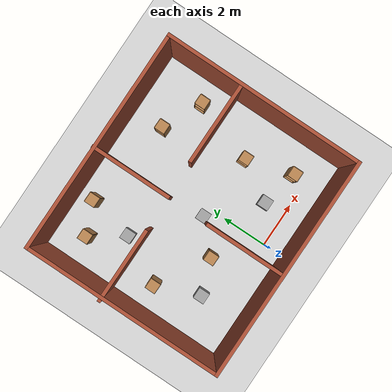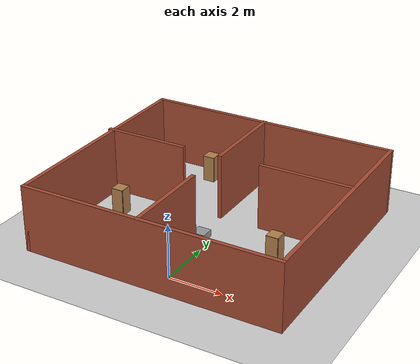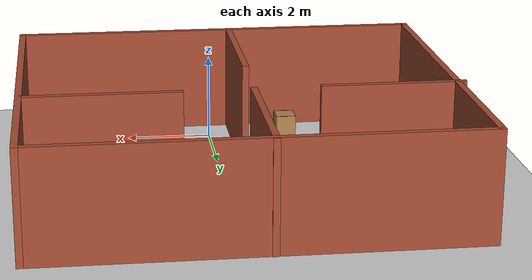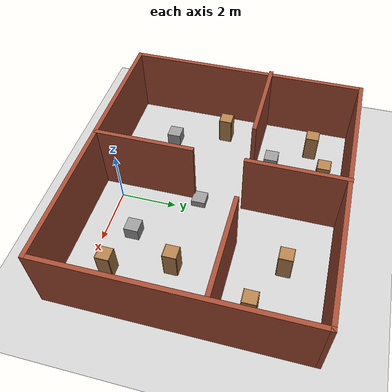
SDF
<sdf version="1.7">
 <world name="default">
  <light name="sun" type="directional">
   <pose>0 0 10 0 -0 0</pose>
   <diffuse>0.8 0.8 0.8 1</diffuse>
   <specular>0.2 0.2 0.2 1</specular>
   <attenuation>
    <range>1000</range>
    <constant>0.9</constant>
    <linear>0.01</linear>
    <quadratic>0.001</quadratic>
   </attenuation>
   <direction>-0.5 0.1 -0.9</direction>
   <spot><inner_angle>0</inner_angle><outer_angle>0</outer_angle><falloff>0</falloff></spot>
  </light>
  <model name="ground_plane">
   <static>1</static>
   <link name="link">
    <collision name="collision">
     <geometry><plane><normal>0 0 1</normal><size>100 100</size></plane></geometry>
     <surface>
      <contact><collide_bitmask>65535</collide_bitmask></contact>
      <friction><ode><mu>100</mu><mu2>50</mu2></ode></friction>
     </surface>
    </collision>
    <visual name="visual">
     <cast_shadows>0</cast_shadows>
     <geometry><plane><normal>0 0 1</normal><size>100 100</size></plane></geometry>
     <material>
      <script><uri>file://media/materials/scripts/gazebo.material</uri><name>Gazebo/Grey</name></script>
     </material>
    </visual>
   </link>
  </model>
  <gravity>0 0 -9.8</gravity>
  <magnetic_field>6e-06 2.3e-05 -4.2e-05</magnetic_field>
  <atmosphere type="adiabatic"/>
  <physics type="ode">
   <max_step_size>0.001</max_step_size>
   <real_time_factor>1</real_time_factor>
   <real_time_update_rate>1000</real_time_update_rate>
  </physics>
  <scene><ambient>0.4 0.4 0.4 1</ambient><background>0.7 0.7 0.7 1</background><shadows>1</shadows></scene>
  <audio><device>default</device></audio>
  <spherical_coordinates>
   <surface_model>EARTH_WGS84</surface_model>
   <latitude_deg>0</latitude_deg>
   <longitude_deg>0</longitude_deg>
   <elevation>0</elevation>
   <heading_deg>0</heading_deg>
  </spherical_coordinates>
  <model name="Untitled">
   <pose>-0.339838 3.43496 0 0 -0 0</pose>
   <link name="Wall_11">
    <collision name="Wall_11_Collision">
     <geometry><box><size>9.75 0.15 2.5</size></box></geometry>
     <pose>0 0 1.25 0 -0 0</pose>
    </collision>
    <visual name="Wall_11_Visual">
     <pose>0 0 1.25 0 -0 0</pose>
     <geometry><box><size>9.75 0.15 2.5</size></box></geometry>
     <material>
      <script><uri>file://media/materials/scripts/gazebo.material</uri><name>Gazebo/Bricks</name></script>
      <ambient>1 1 1 1</ambient>
     </material>
     <meta><layer>0</layer></meta>
    </visual>
    <pose>0.060683 -4.30852 0 0 -0 0</pose>
   </link>
   <link name="Wall_12">
    <collision name="Wall_12_Collision">
     <geometry><box><size>8.75 0.15 2.5</size></box></geometry>
     <pose>0 0 1.25 0 -0 0</pose>
    </collision>
    <visual name="Wall_12_Visual">
     <pose>0 0 1.25 0 -0 0</pose>
     <geometry><box><size>8.75 0.15 2.5</size></box></geometry>
     <material>
      <script><uri>file://media/materials/scripts/gazebo.material</uri><name>Gazebo/Bricks</name></script>
      <ambient>1 1 1 1</ambient>
     </material>
     <meta><layer>0</layer></meta>
    </visual>
    <pose>4.86068 -0.008519 0 0 -0 1.5708</pose>
   </link>
   <link name="Wall_13">
    <collision name="Wall_13_Collision">
     <geometry><box><size>9.75 0.15 2.5</size></box></geometry>
     <pose>0 0 1.25 0 -0 0</pose>
    </collision>
    <visual name="Wall_13_Visual">
     <pose>0 0 1.25 0 -0 0</pose>
     <geometry><box><size>9.75 0.15 2.5</size></box></geometry>
     <material>
      <script><uri>file://media/materials/scripts/gazebo.material</uri><name>Gazebo/Bricks</name></script>
      <ambient>1 1 1 1</ambient>
     </material>
     <meta><layer>0</layer></meta>
    </visual>
    <pose>0.060683 4.29148 0 0 -0 3.14159</pose>
   </link>
   <link name="Wall_14">
    <collision name="Wall_14_Collision">
     <geometry><box><size>8.75 0.15 2.5</size></box></geometry>
     <pose>0 0 1.25 0 -0 0</pose>
    </collision>
    <visual name="Wall_14_Visual">
     <pose>0 0 1.25 0 -0 0</pose>
     <geometry><box><size>8.75 0.15 2.5</size></box></geometry>
     <material>
      <script><uri>file://media/materials/scripts/gazebo.material</uri><name>Gazebo/Bricks</name></script>
      <ambient>1 1 1 1</ambient>
     </material>
     <meta><layer>0</layer></meta>
    </visual>
    <pose>-4.73932 -0.008519 0 0 -0 -1.5708</pose>
   </link>
   <link name="Wall_16">
    <collision name="Wall_16_Collision">
     <geometry><box><size>3.5 0.15 2.5</size></box></geometry>
     <pose>0 0 1.25 0 -0 0</pose>
    </collision>
    <visual name="Wall_16_Visual">
     <pose>0 0 1.25 0 -0 0</pose>
     <geometry><box><size>3.5 0.15 2.5</size></box></geometry>
     <material>
      <script><uri>file://media/materials/scripts/gazebo.material</uri><name>Gazebo/Bricks</name></script>
      <ambient>1 1 1 1</ambient>
     </material>
     <meta><layer>0</layer></meta>
    </visual>
    <pose>-0.208292 2.63352 0 0 -0 -1.5708</pose>
   </link>
   <link name="Wall_19">
    <collision name="Wall_19_Collision">
     <geometry><box><size>3.5 0.15 2.5</size></box></geometry>
     <pose>0 0 1.25 0 -0 0</pose>
    </collision>
    <visual name="Wall_19_Visual">
     <pose>0 0 1.25 0 -0 0</pose>
     <geometry><box><size>3.5 0.15 2.5</size></box></geometry>
     <material>
      <script><uri>file://media/materials/scripts/gazebo.material</uri><name>Gazebo/Bricks</name></script>
      <ambient>1 1 1 1</ambient>
     </material>
     <meta><layer>0</layer></meta>
    </visual>
    <pose>3.08493 0.991162 0 0 -0 0</pose>
   </link>
   <link name="Wall_21">
    <collision name="Wall_21_Collision">
     <geometry><box><size>3.25 0.15 2.5</size></box></geometry>
     <pose>0 0 1.25 0 -0 0</pose>
    </collision>
    <visual name="Wall_21_Visual">
     <pose>0 0 1.25 0 -0 0</pose>
     <geometry><box><size>3.25 0.15 2.5</size></box></geometry>
     <material>
      <script><uri>file://media/materials/scripts/gazebo.material</uri><name>Gazebo/Bricks</name></script>
      <ambient>1 1 1 1</ambient>
     </material>
     <meta><layer>0</layer></meta>
    </visual>
    <pose>-3.31068 0.910251 0 0 -0 0</pose>
   </link>
   <link name="Wall_23">
    <collision name="Wall_23_Collision">
     <geometry><box><size>3.5 0.15 2.5</size></box></geometry>
     <pose>0 0 1.25 0 -0 0</pose>
    </collision>
    <visual name="Wall_23_Visual">
     <pose>0 0 1.25 0 -0 0</pose>
     <geometry><box><size>3.5 0.15 2.5</size></box></geometry>
     <material>
      <script><uri>file://media/materials/scripts/gazebo.material</uri><name>Gazebo/Bricks</name></script>
      <ambient>1 1 1 1</ambient>
     </material>
     <meta><layer>0</layer></meta>
    </visual>
    <pose>-0.248748 -2.58525 0 0 -0 -1.5708</pose>
   </link>
   <static>1</static>
  </model>
  <model name="unit_box">
   <link name="link">
    <inertial>
     <mass>1</mass>
     <inertia>
      <ixx>0.166667</ixx>
      <ixy>0</ixy>
      <ixz>0</ixz>
      <iyy>0.166667</iyy>
      <iyz>0</iyz>
      <izz>0.166667</izz>
     </inertia>
    </inertial>
    <visual name="visual">
     <geometry><box><size>0.5 0.5 0.5</size></box></geometry>
     <material>
      <script><name>Gazebo/Grey</name><uri>file://media/materials/scripts/gazebo.material</uri></script>
      <shader type="pixel"><normal_map>__default__</normal_map></shader>
      <ambient>0.3 0.3 0.3 1</ambient>
      <diffuse>0.7 0.7 0.7 1</diffuse>
      <specular>0.01 0.01 0.01 1</specular>
      <emissive>0 0 0 1</emissive>
     </material>
    </visual>
    <collision name="collision">
     <geometry><box><size>0.5 0.5 0.5</size></box></geometry>
     <surface>
      <friction>
       <ode><mu>1</mu><mu2>1</mu2><fdir1>0 0 0</fdir1><slip1>0</slip1><slip2>0</slip2></ode>
       <torsional>
        <coefficient>1</coefficient>
        <patch_radius>0</patch_radius>
        <surface_radius>0</surface_radius>
        <use_patch_radius>1</use_patch_radius>
        <ode><slip>0</slip></ode>
       </torsional>
      </friction>
      <bounce><restitution_coefficient>0</restitution_coefficient><threshold>1e+06</threshold></bounce>
      <contact>
       <collide_without_contact>0</collide_without_contact>
       <collide_without_contact_bitmask>1</collide_without_contact_bitmask>
       <collide_bitmask>1</collide_bitmask>
       <ode>
        <soft_cfm>0</soft_cfm>
        <soft_erp>0.2</soft_erp>
        <kp>1e+13</kp>
        <kd>1</kd>
        <max_vel>0.01</max_vel>
        <min_depth>0</min_depth>
       </ode>
       <bullet>
        <split_impulse>1</split_impulse>
        <split_impulse_penetration_threshold>-0.01</split_impulse_penetration_threshold>
        <soft_cfm>0</soft_cfm>
        <soft_erp>0.2</soft_erp>
        <kp>1e+13</kp>
        <kd>1</kd>
       </bullet>
      </contact>
     </surface>
    </collision>
   </link>
   <link name="link_clone">
    <inertial>
     <mass>1</mass>
     <inertia>
      <ixx>0.166667</ixx>
      <ixy>0</ixy>
      <ixz>0</ixz>
      <iyy>0.166667</iyy>
      <iyz>0</iyz>
      <izz>0.166667</izz>
     </inertia>
    </inertial>
    <pose>2.42063 -2.15933 0 0 -0 0</pose>
    <visual name="visual">
     <geometry><box><size>0.5 0.5 0.5</size></box></geometry>
     <material>
      <script><name>Gazebo/Grey</name><uri>file://media/materials/scripts/gazebo.material</uri></script>
      <shader type="pixel"><normal_map>__default__</normal_map></shader>
      <ambient>0.3 0.3 0.3 1</ambient>
      <diffuse>0.7 0.7 0.7 1</diffuse>
      <specular>0.01 0.01 0.01 1</specular>
      <emissive>0 0 0 1</emissive>
     </material>
     <pose>0 0 -0.25 0 -0 0</pose>
    </visual>
    <collision name="collision">
     <geometry><box><size>0.5 0.5 0.5</size></box></geometry>
     <surface>
      <friction>
       <ode><mu>1</mu><mu2>1</mu2><fdir1>0 0 0</fdir1><slip1>0</slip1><slip2>0</slip2></ode>
       <torsional>
        <coefficient>1</coefficient>
        <patch_radius>0</patch_radius>
        <surface_radius>0</surface_radius>
        <use_patch_radius>1</use_patch_radius>
        <ode><slip>0</slip></ode>
       </torsional>
      </friction>
      <bounce><restitution_coefficient>0</restitution_coefficient><threshold>1e+06</threshold></bounce>
      <contact>
       <collide_without_contact>0</collide_without_contact>
       <collide_without_contact_bitmask>1</collide_without_contact_bitmask>
       <collide_bitmask>1</collide_bitmask>
       <ode>
        <soft_cfm>0</soft_cfm>
        <soft_erp>0.2</soft_erp>
        <kp>1e+13</kp>
        <kd>1</kd>
        <max_vel>0.01</max_vel>
        <min_depth>0</min_depth>
       </ode>
       <bullet>
        <split_impulse>1</split_impulse>
        <split_impulse_penetration_threshold>-0.01</split_impulse_penetration_threshold>
        <soft_cfm>0</soft_cfm>
        <soft_erp>0.2</soft_erp>
        <kp>1e+13</kp>
        <kd>1</kd>
       </bullet>
      </contact>
     </surface>
    </collision>
   </link>
   <link name="link_clone_0">
    <inertial>
     <mass>1</mass>
     <inertia>
      <ixx>0.166667</ixx>
      <ixy>0</ixy>
      <ixz>0</ixz>
      <iyy>0.166667</iyy>
      <iyz>0</iyz>
      <izz>0.166667</izz>
     </inertia>
    </inertial>
    <pose>-0.36477 -3.92474 0 0 -0 0</pose>
    <visual name="visual">
     <geometry><box><size>0.5 0.5 0.5</size></box></geometry>
     <material>
      <script><name>Gazebo/Grey</name><uri>file://media/materials/scripts/gazebo.material</uri></script>
      <shader type="pixel"><normal_map>__default__</normal_map></shader>
      <ambient>0.3 0.3 0.3 1</ambient>
      <diffuse>0.7 0.7 0.7 1</diffuse>
      <specular>0.01 0.01 0.01 1</specular>
      <emissive>0 0 0 1</emissive>
     </material>
    </visual>
    <collision name="collision">
     <geometry><box><size>0.5 0.5 0.5</size></box></geometry>
     <surface>
      <friction>
       <ode><mu>1</mu><mu2>1</mu2><fdir1>0 0 0</fdir1><slip1>0</slip1><slip2>0</slip2></ode>
       <torsional>
        <coefficient>1</coefficient>
        <patch_radius>0</patch_radius>
        <surface_radius>0</surface_radius>
        <use_patch_radius>1</use_patch_radius>
        <ode><slip>0</slip></ode>
       </torsional>
      </friction>
      <bounce><restitution_coefficient>0</restitution_coefficient><threshold>1e+06</threshold></bounce>
      <contact>
       <collide_without_contact>0</collide_without_contact>
       <collide_without_contact_bitmask>1</collide_without_contact_bitmask>
       <collide_bitmask>1</collide_bitmask>
       <ode>
        <soft_cfm>0</soft_cfm>
        <soft_erp>0.2</soft_erp>
        <kp>1e+13</kp>
        <kd>1</kd>
        <max_vel>0.01</max_vel>
        <min_depth>0</min_depth>
       </ode>
       <bullet>
        <split_impulse>1</split_impulse>
        <split_impulse_penetration_threshold>-0.01</split_impulse_penetration_threshold>
        <soft_cfm>0</soft_cfm>
        <soft_erp>0.2</soft_erp>
        <kp>1e+13</kp>
        <kd>1</kd>
       </bullet>
      </contact>
     </surface>
    </collision>
   </link>
   <link name="link_clone_1">
    <inertial>
     <mass>1</mass>
     <inertia>
      <ixx>0.166667</ixx>
      <ixy>0</ixy>
      <ixz>0</ixz>
      <iyy>0.166667</iyy>
      <iyz>0</iyz>
      <izz>0.166667</izz>
     </inertia>
    </inertial>
    <pose>4.32376 -3.97118 0 0 -0 0</pose>
    <visual name="visual">
     <geometry><box><size>0.5 0.5 0.5</size></box></geometry>
     <material>
      <script><name>Gazebo/Grey</name><uri>file://media/materials/scripts/gazebo.material</uri></script>
      <shader type="pixel"><normal_map>__default__</normal_map></shader>
      <ambient>0.3 0.3 0.3 1</ambient>
      <diffuse>0.7 0.7 0.7 1</diffuse>
      <specular>0.01 0.01 0.01 1</specular>
      <emissive>0 0 0 1</emissive>
     </material>
    </visual>
    <collision name="collision">
     <geometry><box><size>0.5 0.5 0.5</size></box></geometry>
     <surface>
      <friction>
       <ode><mu>1</mu><mu2>1</mu2><fdir1>0 0 0</fdir1><slip1>0</slip1><slip2>0</slip2></ode>
       <torsional>
        <coefficient>1</coefficient>
        <patch_radius>0</patch_radius>
        <surface_radius>0</surface_radius>
        <use_patch_radius>1</use_patch_radius>
        <ode><slip>0</slip></ode>
       </torsional>
      </friction>
      <bounce><restitution_coefficient>0</restitution_coefficient><threshold>1e+06</threshold></bounce>
      <contact>
       <collide_without_contact>0</collide_without_contact>
       <collide_without_contact_bitmask>1</collide_without_contact_bitmask>
       <collide_bitmask>1</collide_bitmask>
       <ode>
        <soft_cfm>0</soft_cfm>
        <soft_erp>0.2</soft_erp>
        <kp>1e+13</kp>
        <kd>1</kd>
        <max_vel>0.01</max_vel>
        <min_depth>0</min_depth>
       </ode>
       <bullet>
        <split_impulse>1</split_impulse>
        <split_impulse_penetration_threshold>-0.01</split_impulse_penetration_threshold>
        <soft_cfm>0</soft_cfm>
        <soft_erp>0.2</soft_erp>
        <kp>1e+13</kp>
        <kd>1</kd>
       </bullet>
      </contact>
     </surface>
    </collision>
   </link>
   <static>0</static>
   <pose>-2.841 4.96458 0.25 0 -0 0</pose>
  </model>
  <model name="cabinet">
   <static>1</static>
   <link name="cabinet_bottom_plate">
    <inertial>
     <pose>0 0 -1 0 -0 0</pose>
     <inertia><ixx>2.05</ixx><ixy>0</ixy><ixz>0</ixz><iyy>2.05</iyy><iyz>0</iyz><izz>2.05</izz></inertia>
     <mass>25</mass>
    </inertial>
    <collision name="cabinet_bottom_plate_geom">
     <pose>0 0 0.01 0 -0 0</pose>
     <geometry><box><size>0.45 0.45 0.02</size></box></geometry>
    </collision>
    <visual name="cabinet_bottom_plate_geom_visual">
     <pose>0 0 0.01 0 -0 0</pose>
     <geometry><box><size>0.45 0.45 0.02</size></box></geometry>
     <material>
      <script><uri>file://media/materials/scripts/gazebo.material</uri><name>Gazebo/Wood</name></script>
     </material>
    </visual>
    <collision name="cabinet_bottom_plate_geom_cabinet_back_plate">
     <pose>0.235 0 0.51 0 -0 0</pose>
     <geometry><box><size>0.02 0.45 1.02</size></box></geometry>
    </collision>
    <visual name="cabinet_bottom_plate_geom_cabinet_back_plate_visual">
     <pose>0.235 0 0.51 0 -0 0</pose>
     <geometry><box><size>0.02 0.45 1.02</size></box></geometry>
     <material>
      <script><uri>file://media/materials/scripts/gazebo.material</uri><name>Gazebo/Wood</name></script>
     </material>
    </visual>
    <collision name="cabinet_bottom_plate_geom_cabinet_left_plate">
     <pose>0 0.235 0.51 0 -0 0</pose>
     <geometry><box><size>0.45 0.02 1.02</size></box></geometry>
    </collision>
    <visual name="cabinet_bottom_plate_geom_cabinet_left_plate_visual">
     <pose>0 0.235 0.51 0 -0 0</pose>
     <geometry><box><size>0.45 0.02 1.02</size></box></geometry>
     <material>
      <script><uri>file://media/materials/scripts/gazebo.material</uri><name>Gazebo/Wood</name></script>
     </material>
    </visual>
    <collision name="cabinet_bottom_plate_geom_cabinet_middle_plate">
     <pose>0 0 0.51 0 -0 0</pose>
     <geometry><box><size>0.45 0.45 0.02</size></box></geometry>
    </collision>
    <visual name="cabinet_bottom_plate_geom_cabinet_middle_plate_visual">
     <pose>0 0 0.51 0 -0 0</pose>
     <geometry><box><size>0.45 0.45 0.02</size></box></geometry>
     <material>
      <script><uri>file://media/materials/scripts/gazebo.material</uri><name>Gazebo/Wood</name></script>
     </material>
    </visual>
    <collision name="cabinet_bottom_plate_geom_cabinet_right_plate">
     <pose>0 -0.235 0.51 0 -0 0</pose>
     <geometry><box><size>0.45 0.02 1.02</size></box></geometry>
    </collision>
    <visual name="cabinet_bottom_plate_geom_cabinet_right_plate_visual">
     <pose>0 -0.235 0.51 0 -0 0</pose>
     <geometry><box><size>0.45 0.02 1.02</size></box></geometry>
     <material>
      <script><uri>file://media/materials/scripts/gazebo.material</uri><name>Gazebo/Wood</name></script>
     </material>
    </visual>
    <collision name="cabinet_bottom_plate_geom_cabinet_top_plate">
     <pose>0 0 1.01 0 -0 0</pose>
     <geometry><box><size>0.45 0.45 0.02</size></box></geometry>
    </collision>
    <visual name="cabinet_bottom_plate_geom_cabinet_top_plate_visual">
     <pose>0 0 1.01 0 -0 0</pose>
     <geometry><box><size>0.45 0.45 0.02</size></box></geometry>
     <material>
      <script><uri>file://media/materials/scripts/gazebo.material</uri><name>Gazebo/Wood</name></script>
     </material>
    </visual>
   </link>
   <pose>2.49141 2.70117 0 0 -0 0</pose>
  </model>
  <model name="cabinet_clone">
   <static>1</static>
   <link name="cabinet_bottom_plate">
    <inertial>
     <pose>0 0 -1 0 -0 0</pose>
     <inertia><ixx>2.05</ixx><ixy>0</ixy><ixz>0</ixz><iyy>2.05</iyy><iyz>0</iyz><izz>2.05</izz></inertia>
     <mass>25</mass>
    </inertial>
    <collision name="cabinet_bottom_plate_geom">
     <pose>0 0 0.01 0 -0 0</pose>
     <geometry><box><size>0.45 0.45 0.02</size></box></geometry>
    </collision>
    <visual name="cabinet_bottom_plate_geom_visual">
     <pose>0 0 0.01 0 -0 0</pose>
     <geometry><box><size>0.45 0.45 0.02</size></box></geometry>
     <material>
      <script><uri>file://media/materials/scripts/gazebo.material</uri><name>Gazebo/Wood</name></script>
     </material>
    </visual>
    <collision name="cabinet_bottom_plate_geom_cabinet_back_plate">
     <pose>0.235 0 0.51 0 -0 0</pose>
     <geometry><box><size>0.02 0.45 1.02</size></box></geometry>
    </collision>
    <visual name="cabinet_bottom_plate_geom_cabinet_back_plate_visual">
     <pose>0.235 0 0.51 0 -0 0</pose>
     <geometry><box><size>0.02 0.45 1.02</size></box></geometry>
     <material>
      <script><uri>file://media/materials/scripts/gazebo.material</uri><name>Gazebo/Wood</name></script>
     </material>
    </visual>
    <collision name="cabinet_bottom_plate_geom_cabinet_left_plate">
     <pose>0 0.235 0.51 0 -0 0</pose>
     <geometry><box><size>0.45 0.02 1.02</size></box></geometry>
    </collision>
    <visual name="cabinet_bottom_plate_geom_cabinet_left_plate_visual">
     <pose>0 0.235 0.51 0 -0 0</pose>
     <geometry><box><size>0.45 0.02 1.02</size></box></geometry>
     <material>
      <script><uri>file://media/materials/scripts/gazebo.material</uri><name>Gazebo/Wood</name></script>
     </material>
    </visual>
    <collision name="cabinet_bottom_plate_geom_cabinet_middle_plate">
     <pose>0 0 0.51 0 -0 0</pose>
     <geometry><box><size>0.45 0.45 0.02</size></box></geometry>
    </collision>
    <visual name="cabinet_bottom_plate_geom_cabinet_middle_plate_visual">
     <pose>0 0 0.51 0 -0 0</pose>
     <geometry><box><size>0.45 0.45 0.02</size></box></geometry>
     <material>
      <script><uri>file://media/materials/scripts/gazebo.material</uri><name>Gazebo/Wood</name></script>
     </material>
    </visual>
    <collision name="cabinet_bottom_plate_geom_cabinet_right_plate">
     <pose>0 -0.235 0.51 0 -0 0</pose>
     <geometry><box><size>0.45 0.02 1.02</size></box></geometry>
    </collision>
    <visual name="cabinet_bottom_plate_geom_cabinet_right_plate_visual">
     <pose>0 -0.235 0.51 0 -0 0</pose>
     <geometry><box><size>0.45 0.02 1.02</size></box></geometry>
     <material>
      <script><uri>file://media/materials/scripts/gazebo.material</uri><name>Gazebo/Wood</name></script>
     </material>
    </visual>
    <collision name="cabinet_bottom_plate_geom_cabinet_top_plate">
     <pose>0 0 1.01 0 -0 0</pose>
     <geometry><box><size>0.45 0.45 0.02</size></box></geometry>
    </collision>
    <visual name="cabinet_bottom_plate_geom_cabinet_top_plate_visual">
     <pose>0 0 1.01 0 -0 0</pose>
     <geometry><box><size>0.45 0.45 0.02</size></box></geometry>
     <material>
      <script><uri>file://media/materials/scripts/gazebo.material</uri><name>Gazebo/Wood</name></script>
     </material>
    </visual>
   </link>
   <pose>1.66923 6.24017 0 0 -0 0</pose>
  </model>
  <model name="cabinet_clone_clone">
   <static>1</static>
   <link name="cabinet_bottom_plate">
    <inertial>
     <pose>0 0 -1 0 -0 0</pose>
     <inertia><ixx>2.05</ixx><ixy>0</ixy><ixz>0</ixz><iyy>2.05</iyy><iyz>0</iyz><izz>2.05</izz></inertia>
     <mass>25</mass>
    </inertial>
    <collision name="cabinet_bottom_plate_geom">
     <pose>0 0 0.01 0 -0 0</pose>
     <geometry><box><size>0.45 0.45 0.02</size></box></geometry>
    </collision>
    <visual name="cabinet_bottom_plate_geom_visual">
     <pose>0 0 0.01 0 -0 0</pose>
     <geometry><box><size>0.45 0.45 0.02</size></box></geometry>
     <material>
      <script><uri>file://media/materials/scripts/gazebo.material</uri><name>Gazebo/Wood</name></script>
     </material>
    </visual>
    <collision name="cabinet_bottom_plate_geom_cabinet_back_plate">
     <pose>0.235 0 0.51 0 -0 0</pose>
     <geometry><box><size>0.02 0.45 1.02</size></box></geometry>
    </collision>
    <visual name="cabinet_bottom_plate_geom_cabinet_back_plate_visual">
     <pose>0.235 0 0.51 0 -0 0</pose>
     <geometry><box><size>0.02 0.45 1.02</size></box></geometry>
     <material>
      <script><uri>file://media/materials/scripts/gazebo.material</uri><name>Gazebo/Wood</name></script>
     </material>
    </visual>
    <collision name="cabinet_bottom_plate_geom_cabinet_left_plate">
     <pose>0 0.235 0.51 0 -0 0</pose>
     <geometry><box><size>0.45 0.02 1.02</size></box></geometry>
    </collision>
    <visual name="cabinet_bottom_plate_geom_cabinet_left_plate_visual">
     <pose>0 0.235 0.51 0 -0 0</pose>
     <geometry><box><size>0.45 0.02 1.02</size></box></geometry>
     <material>
      <script><uri>file://media/materials/scripts/gazebo.material</uri><name>Gazebo/Wood</name></script>
     </material>
    </visual>
    <collision name="cabinet_bottom_plate_geom_cabinet_middle_plate">
     <pose>0 0 0.51 0 -0 0</pose>
     <geometry><box><size>0.45 0.45 0.02</size></box></geometry>
    </collision>
    <visual name="cabinet_bottom_plate_geom_cabinet_middle_plate_visual">
     <pose>0 0 0.51 0 -0 0</pose>
     <geometry><box><size>0.45 0.45 0.02</size></box></geometry>
     <material>
      <script><uri>file://media/materials/scripts/gazebo.material</uri><name>Gazebo/Wood</name></script>
     </material>
    </visual>
    <collision name="cabinet_bottom_plate_geom_cabinet_right_plate">
     <pose>0 -0.235 0.51 0 -0 0</pose>
     <geometry><box><size>0.45 0.02 1.02</size></box></geometry>
    </collision>
    <visual name="cabinet_bottom_plate_geom_cabinet_right_plate_visual">
     <pose>0 -0.235 0.51 0 -0 0</pose>
     <geometry><box><size>0.45 0.02 1.02</size></box></geometry>
     <material>
      <script><uri>file://media/materials/scripts/gazebo.material</uri><name>Gazebo/Wood</name></script>
     </material>
    </visual>
    <collision name="cabinet_bottom_plate_geom_cabinet_top_plate">
     <pose>0 0 1.01 0 -0 0</pose>
     <geometry><box><size>0.45 0.45 0.02</size></box></geometry>
    </collision>
    <visual name="cabinet_bottom_plate_geom_cabinet_top_plate_visual">
     <pose>0 0 1.01 0 -0 0</pose>
     <geometry><box><size>0.45 0.45 0.02</size></box></geometry>
     <material>
      <script><uri>file://media/materials/scripts/gazebo.material</uri><name>Gazebo/Wood</name></script>
     </material>
    </visual>
   </link>
   <pose>3.40205 5.43451 0 0 -0 0</pose>
  </model>
  <model name="cabinet_clone_clone_0">
   <static>1</static>
   <link name="cabinet_bottom_plate">
    <inertial>
     <pose>0 0 -1 0 -0 0</pose>
     <inertia><ixx>2.05</ixx><ixy>0</ixy><ixz>0</ixz><iyy>2.05</iyy><iyz>0</iyz><izz>2.05</izz></inertia>
     <mass>25</mass>
    </inertial>
    <collision name="cabinet_bottom_plate_geom">
     <pose>0 0 0.01 0 -0 0</pose>
     <geometry><box><size>0.45 0.45 0.02</size></box></geometry>
    </collision>
    <visual name="cabinet_bottom_plate_geom_visual">
     <pose>0 0 0.01 0 -0 0</pose>
     <geometry><box><size>0.45 0.45 0.02</size></box></geometry>
     <material>
      <script><uri>file://media/materials/scripts/gazebo.material</uri><name>Gazebo/Wood</name></script>
     </material>
    </visual>
    <collision name="cabinet_bottom_plate_geom_cabinet_back_plate">
     <pose>0.235 0 0.51 0 -0 0</pose>
     <geometry><box><size>0.02 0.45 1.02</size></box></geometry>
    </collision>
    <visual name="cabinet_bottom_plate_geom_cabinet_back_plate_visual">
     <pose>0.235 0 0.51 0 -0 0</pose>
     <geometry><box><size>0.02 0.45 1.02</size></box></geometry>
     <material>
      <script><uri>file://media/materials/scripts/gazebo.material</uri><name>Gazebo/Wood</name></script>
     </material>
    </visual>
    <collision name="cabinet_bottom_plate_geom_cabinet_left_plate">
     <pose>0 0.235 0.51 0 -0 0</pose>
     <geometry><box><size>0.45 0.02 1.02</size></box></geometry>
    </collision>
    <visual name="cabinet_bottom_plate_geom_cabinet_left_plate_visual">
     <pose>0 0.235 0.51 0 -0 0</pose>
     <geometry><box><size>0.45 0.02 1.02</size></box></geometry>
     <material>
      <script><uri>file://media/materials/scripts/gazebo.material</uri><name>Gazebo/Wood</name></script>
     </material>
    </visual>
    <collision name="cabinet_bottom_plate_geom_cabinet_middle_plate">
     <pose>0 0 0.51 0 -0 0</pose>
     <geometry><box><size>0.45 0.45 0.02</size></box></geometry>
    </collision>
    <visual name="cabinet_bottom_plate_geom_cabinet_middle_plate_visual">
     <pose>0 0 0.51 0 -0 0</pose>
     <geometry><box><size>0.45 0.45 0.02</size></box></geometry>
     <material>
      <script><uri>file://media/materials/scripts/gazebo.material</uri><name>Gazebo/Wood</name></script>
     </material>
    </visual>
    <collision name="cabinet_bottom_plate_geom_cabinet_right_plate">
     <pose>0 -0.235 0.51 0 -0 0</pose>
     <geometry><box><size>0.45 0.02 1.02</size></box></geometry>
    </collision>
    <visual name="cabinet_bottom_plate_geom_cabinet_right_plate_visual">
     <pose>0 -0.235 0.51 0 -0 0</pose>
     <geometry><box><size>0.45 0.02 1.02</size></box></geometry>
     <material>
      <script><uri>file://media/materials/scripts/gazebo.material</uri><name>Gazebo/Wood</name></script>
     </material>
    </visual>
    <collision name="cabinet_bottom_plate_geom_cabinet_top_plate">
     <pose>0 0 1.01 0 -0 0</pose>
     <geometry><box><size>0.45 0.45 0.02</size></box></geometry>
    </collision>
    <visual name="cabinet_bottom_plate_geom_cabinet_top_plate_visual">
     <pose>0 0 1.01 0 -0 0</pose>
     <geometry><box><size>0.45 0.45 0.02</size></box></geometry>
     <material>
      <script><uri>file://media/materials/scripts/gazebo.material</uri><name>Gazebo/Wood</name></script>
     </material>
    </visual>
   </link>
   <pose>3.07051 0.69028 0 0 -0 0</pose>
  </model>
  <model name="cabinet_clone_clone_1">
   <static>1</static>
   <link name="cabinet_bottom_plate">
    <inertial>
     <pose>0 0 -1 0 -0 0</pose>
     <inertia><ixx>2.05</ixx><ixy>0</ixy><ixz>0</ixz><iyy>2.05</iyy><iyz>0</iyz><izz>2.05</izz></inertia>
     <mass>25</mass>
    </inertial>
    <collision name="cabinet_bottom_plate_geom">
     <pose>0 0 0.01 0 -0 0</pose>
     <geometry><box><size>0.45 0.45 0.02</size></box></geometry>
    </collision>
    <visual name="cabinet_bottom_plate_geom_visual">
     <pose>0 0 0.01 0 -0 0</pose>
     <geometry><box><size>0.45 0.45 0.02</size></box></geometry>
     <material>
      <script><uri>file://media/materials/scripts/gazebo.material</uri><name>Gazebo/Wood</name></script>
     </material>
    </visual>
    <collision name="cabinet_bottom_plate_geom_cabinet_back_plate">
     <pose>0.235 0 0.51 0 -0 0</pose>
     <geometry><box><size>0.02 0.45 1.02</size></box></geometry>
    </collision>
    <visual name="cabinet_bottom_plate_geom_cabinet_back_plate_visual">
     <pose>0.235 0 0.51 0 -0 0</pose>
     <geometry><box><size>0.02 0.45 1.02</size></box></geometry>
     <material>
      <script><uri>file://media/materials/scripts/gazebo.material</uri><name>Gazebo/Wood</name></script>
     </material>
    </visual>
    <collision name="cabinet_bottom_plate_geom_cabinet_left_plate">
     <pose>0 0.235 0.51 0 -0 0</pose>
     <geometry><box><size>0.45 0.02 1.02</size></box></geometry>
    </collision>
    <visual name="cabinet_bottom_plate_geom_cabinet_left_plate_visual">
     <pose>0 0.235 0.51 0 -0 0</pose>
     <geometry><box><size>0.45 0.02 1.02</size></box></geometry>
     <material>
      <script><uri>file://media/materials/scripts/gazebo.material</uri><name>Gazebo/Wood</name></script>
     </material>
    </visual>
    <collision name="cabinet_bottom_plate_geom_cabinet_middle_plate">
     <pose>0 0 0.51 0 -0 0</pose>
     <geometry><box><size>0.45 0.45 0.02</size></box></geometry>
    </collision>
    <visual name="cabinet_bottom_plate_geom_cabinet_middle_plate_visual">
     <pose>0 0 0.51 0 -0 0</pose>
     <geometry><box><size>0.45 0.45 0.02</size></box></geometry>
     <material>
      <script><uri>file://media/materials/scripts/gazebo.material</uri><name>Gazebo/Wood</name></script>
     </material>
    </visual>
    <collision name="cabinet_bottom_plate_geom_cabinet_right_plate">
     <pose>0 -0.235 0.51 0 -0 0</pose>
     <geometry><box><size>0.45 0.02 1.02</size></box></geometry>
    </collision>
    <visual name="cabinet_bottom_plate_geom_cabinet_right_plate_visual">
     <pose>0 -0.235 0.51 0 -0 0</pose>
     <geometry><box><size>0.45 0.02 1.02</size></box></geometry>
     <material>
      <script><uri>file://media/materials/scripts/gazebo.material</uri><name>Gazebo/Wood</name></script>
     </material>
    </visual>
    <collision name="cabinet_bottom_plate_geom_cabinet_top_plate">
     <pose>0 0 1.01 0 -0 0</pose>
     <geometry><box><size>0.45 0.45 0.02</size></box></geometry>
    </collision>
    <visual name="cabinet_bottom_plate_geom_cabinet_top_plate_visual">
     <pose>0 0 1.01 0 -0 0</pose>
     <geometry><box><size>0.45 0.45 0.02</size></box></geometry>
     <material>
      <script><uri>file://media/materials/scripts/gazebo.material</uri><name>Gazebo/Wood</name></script>
     </material>
    </visual>
   </link>
   <pose>-3.89988 2.95208 0 0 -0 0</pose>
  </model>
  <model name="cabinet_clone_clone_2">
   <static>1</static>
   <link name="cabinet_bottom_plate">
    <inertial>
     <pose>0 0 -1 0 -0 0</pose>
     <inertia><ixx>2.05</ixx><ixy>0</ixy><ixz>0</ixz><iyy>2.05</iyy><iyz>0</iyz><izz>2.05</izz></inertia>
     <mass>25</mass>
    </inertial>
    <collision name="cabinet_bottom_plate_geom">
     <pose>0 0 0.01 0 -0 0</pose>
     <geometry><box><size>0.45 0.45 0.02</size></box></geometry>
    </collision>
    <visual name="cabinet_bottom_plate_geom_visual">
     <pose>0 0 0.01 0 -0 0</pose>
     <geometry><box><size>0.45 0.45 0.02</size></box></geometry>
     <material>
      <script><uri>file://media/materials/scripts/gazebo.material</uri><name>Gazebo/Wood</name></script>
     </material>
    </visual>
    <collision name="cabinet_bottom_plate_geom_cabinet_back_plate">
     <pose>0.235 0 0.51 0 -0 0</pose>
     <geometry><box><size>0.02 0.45 1.02</size></box></geometry>
    </collision>
    <visual name="cabinet_bottom_plate_geom_cabinet_back_plate_visual">
     <pose>0.235 0 0.51 0 -0 0</pose>
     <geometry><box><size>0.02 0.45 1.02</size></box></geometry>
     <material>
      <script><uri>file://media/materials/scripts/gazebo.material</uri><name>Gazebo/Wood</name></script>
     </material>
    </visual>
    <collision name="cabinet_bottom_plate_geom_cabinet_left_plate">
     <pose>0 0.235 0.51 0 -0 0</pose>
     <geometry><box><size>0.45 0.02 1.02</size></box></geometry>
    </collision>
    <visual name="cabinet_bottom_plate_geom_cabinet_left_plate_visual">
     <pose>0 0.235 0.51 0 -0 0</pose>
     <geometry><box><size>0.45 0.02 1.02</size></box></geometry>
     <material>
      <script><uri>file://media/materials/scripts/gazebo.material</uri><name>Gazebo/Wood</name></script>
     </material>
    </visual>
    <collision name="cabinet_bottom_plate_geom_cabinet_middle_plate">
     <pose>0 0 0.51 0 -0 0</pose>
     <geometry><box><size>0.45 0.45 0.02</size></box></geometry>
    </collision>
    <visual name="cabinet_bottom_plate_geom_cabinet_middle_plate_visual">
     <pose>0 0 0.51 0 -0 0</pose>
     <geometry><box><size>0.45 0.45 0.02</size></box></geometry>
     <material>
      <script><uri>file://media/materials/scripts/gazebo.material</uri><name>Gazebo/Wood</name></script>
     </material>
    </visual>
    <collision name="cabinet_bottom_plate_geom_cabinet_right_plate">
     <pose>0 -0.235 0.51 0 -0 0</pose>
     <geometry><box><size>0.45 0.02 1.02</size></box></geometry>
    </collision>
    <visual name="cabinet_bottom_plate_geom_cabinet_right_plate_visual">
     <pose>0 -0.235 0.51 0 -0 0</pose>
     <geometry><box><size>0.45 0.02 1.02</size></box></geometry>
     <material>
      <script><uri>file://media/materials/scripts/gazebo.material</uri><name>Gazebo/Wood</name></script>
     </material>
    </visual>
    <collision name="cabinet_bottom_plate_geom_cabinet_top_plate">
     <pose>0 0 1.01 0 -0 0</pose>
     <geometry><box><size>0.45 0.45 0.02</size></box></geometry>
    </collision>
    <visual name="cabinet_bottom_plate_geom_cabinet_top_plate_visual">
     <pose>0 0 1.01 0 -0 0</pose>
     <geometry><box><size>0.45 0.45 0.02</size></box></geometry>
     <material>
      <script><uri>file://media/materials/scripts/gazebo.material</uri><name>Gazebo/Wood</name></script>
     </material>
    </visual>
   </link>
   <pose>-1.65377 1.6214 0 0 -0 0</pose>
  </model>
  <model name="cabinet_clone_clone_3">
   <static>1</static>
   <link name="cabinet_bottom_plate">
    <inertial>
     <pose>0 0 -1 0 -0 0</pose>
     <inertia><ixx>2.05</ixx><ixy>0</ixy><ixz>0</ixz><iyy>2.05</iyy><iyz>0</iyz><izz>2.05</izz></inertia>
     <mass>25</mass>
    </inertial>
    <collision name="cabinet_bottom_plate_geom">
     <pose>0 0 0.01 0 -0 0</pose>
     <geometry><box><size>0.45 0.45 0.02</size></box></geometry>
    </collision>
    <visual name="cabinet_bottom_plate_geom_visual">
     <pose>0 0 0.01 0 -0 0</pose>
     <geometry><box><size>0.45 0.45 0.02</size></box></geometry>
     <material>
      <script><uri>file://media/materials/scripts/gazebo.material</uri><name>Gazebo/Wood</name></script>
     </material>
    </visual>
    <collision name="cabinet_bottom_plate_geom_cabinet_back_plate">
     <pose>0.235 0 0.51 0 -0 0</pose>
     <geometry><box><size>0.02 0.45 1.02</size></box></geometry>
    </collision>
    <visual name="cabinet_bottom_plate_geom_cabinet_back_plate_visual">
     <pose>0.235 0 0.51 0 -0 0</pose>
     <geometry><box><size>0.02 0.45 1.02</size></box></geometry>
     <material>
      <script><uri>file://media/materials/scripts/gazebo.material</uri><name>Gazebo/Wood</name></script>
     </material>
    </visual>
    <collision name="cabinet_bottom_plate_geom_cabinet_left_plate">
     <pose>0 0.235 0.51 0 -0 0</pose>
     <geometry><box><size>0.45 0.02 1.02</size></box></geometry>
    </collision>
    <visual name="cabinet_bottom_plate_geom_cabinet_left_plate_visual">
     <pose>0 0.235 0.51 0 -0 0</pose>
     <geometry><box><size>0.45 0.02 1.02</size></box></geometry>
     <material>
      <script><uri>file://media/materials/scripts/gazebo.material</uri><name>Gazebo/Wood</name></script>
     </material>
    </visual>
    <collision name="cabinet_bottom_plate_geom_cabinet_middle_plate">
     <pose>0 0 0.51 0 -0 0</pose>
     <geometry><box><size>0.45 0.45 0.02</size></box></geometry>
    </collision>
    <visual name="cabinet_bottom_plate_geom_cabinet_middle_plate_visual">
     <pose>0 0 0.51 0 -0 0</pose>
     <geometry><box><size>0.45 0.45 0.02</size></box></geometry>
     <material>
      <script><uri>file://media/materials/scripts/gazebo.material</uri><name>Gazebo/Wood</name></script>
     </material>
    </visual>
    <collision name="cabinet_bottom_plate_geom_cabinet_right_plate">
     <pose>0 -0.235 0.51 0 -0 0</pose>
     <geometry><box><size>0.45 0.02 1.02</size></box></geometry>
    </collision>
    <visual name="cabinet_bottom_plate_geom_cabinet_right_plate_visual">
     <pose>0 -0.235 0.51 0 -0 0</pose>
     <geometry><box><size>0.45 0.02 1.02</size></box></geometry>
     <material>
      <script><uri>file://media/materials/scripts/gazebo.material</uri><name>Gazebo/Wood</name></script>
     </material>
    </visual>
    <collision name="cabinet_bottom_plate_geom_cabinet_top_plate">
     <pose>0 0 1.01 0 -0 0</pose>
     <geometry><box><size>0.45 0.45 0.02</size></box></geometry>
    </collision>
    <visual name="cabinet_bottom_plate_geom_cabinet_top_plate_visual">
     <pose>0 0 1.01 0 -0 0</pose>
     <geometry><box><size>0.45 0.45 0.02</size></box></geometry>
     <material>
      <script><uri>file://media/materials/scripts/gazebo.material</uri><name>Gazebo/Wood</name></script>
     </material>
    </visual>
   </link>
   <pose>-2.37437 6.93184 0 0 -0 0</pose>
  </model>
  <model name="cabinet_clone_clone_4">
   <static>1</static>
   <link name="cabinet_bottom_plate">
    <inertial>
     <pose>0 0 -1 0 -0 0</pose>
     <inertia><ixx>2.05</ixx><ixy>0</ixy><ixz>0</ixz><iyy>2.05</iyy><iyz>0</iyz><izz>2.05</izz></inertia>
     <mass>25</mass>
    </inertial>
    <collision name="cabinet_bottom_plate_geom">
     <pose>0 0 0.01 0 -0 0</pose>
     <geometry><box><size>0.45 0.45 0.02</size></box></geometry>
    </collision>
    <visual name="cabinet_bottom_plate_geom_visual">
     <pose>0 0 0.01 0 -0 0</pose>
     <geometry><box><size>0.45 0.45 0.02</size></box></geometry>
     <material>
      <script><uri>file://media/materials/scripts/gazebo.material</uri><name>Gazebo/Wood</name></script>
     </material>
    </visual>
    <collision name="cabinet_bottom_plate_geom_cabinet_back_plate">
     <pose>0.235 0 0.51 0 -0 0</pose>
     <geometry><box><size>0.02 0.45 1.02</size></box></geometry>
    </collision>
    <visual name="cabinet_bottom_plate_geom_cabinet_back_plate_visual">
     <pose>0.235 0 0.51 0 -0 0</pose>
     <geometry><box><size>0.02 0.45 1.02</size></box></geometry>
     <material>
      <script><uri>file://media/materials/scripts/gazebo.material</uri><name>Gazebo/Wood</name></script>
     </material>
    </visual>
    <collision name="cabinet_bottom_plate_geom_cabinet_left_plate">
     <pose>0 0.235 0.51 0 -0 0</pose>
     <geometry><box><size>0.45 0.02 1.02</size></box></geometry>
    </collision>
    <visual name="cabinet_bottom_plate_geom_cabinet_left_plate_visual">
     <pose>0 0.235 0.51 0 -0 0</pose>
     <geometry><box><size>0.45 0.02 1.02</size></box></geometry>
     <material>
      <script><uri>file://media/materials/scripts/gazebo.material</uri><name>Gazebo/Wood</name></script>
     </material>
    </visual>
    <collision name="cabinet_bottom_plate_geom_cabinet_middle_plate">
     <pose>0 0 0.51 0 -0 0</pose>
     <geometry><box><size>0.45 0.45 0.02</size></box></geometry>
    </collision>
    <visual name="cabinet_bottom_plate_geom_cabinet_middle_plate_visual">
     <pose>0 0 0.51 0 -0 0</pose>
     <geometry><box><size>0.45 0.45 0.02</size></box></geometry>
     <material>
      <script><uri>file://media/materials/scripts/gazebo.material</uri><name>Gazebo/Wood</name></script>
     </material>
    </visual>
    <collision name="cabinet_bottom_plate_geom_cabinet_right_plate">
     <pose>0 -0.235 0.51 0 -0 0</pose>
     <geometry><box><size>0.45 0.02 1.02</size></box></geometry>
    </collision>
    <visual name="cabinet_bottom_plate_geom_cabinet_right_plate_visual">
     <pose>0 -0.235 0.51 0 -0 0</pose>
     <geometry><box><size>0.45 0.02 1.02</size></box></geometry>
     <material>
      <script><uri>file://media/materials/scripts/gazebo.material</uri><name>Gazebo/Wood</name></script>
     </material>
    </visual>
    <collision name="cabinet_bottom_plate_geom_cabinet_top_plate">
     <pose>0 0 1.01 0 -0 0</pose>
     <geometry><box><size>0.45 0.45 0.02</size></box></geometry>
    </collision>
    <visual name="cabinet_bottom_plate_geom_cabinet_top_plate_visual">
     <pose>0 0 1.01 0 -0 0</pose>
     <geometry><box><size>0.45 0.45 0.02</size></box></geometry>
     <material>
      <script><uri>file://media/materials/scripts/gazebo.material</uri><name>Gazebo/Wood</name></script>
     </material>
    </visual>
   </link>
   <pose>-3.76762 6.34297 0 0 -0 0</pose>
  </model>
 </world>
</sdf>
